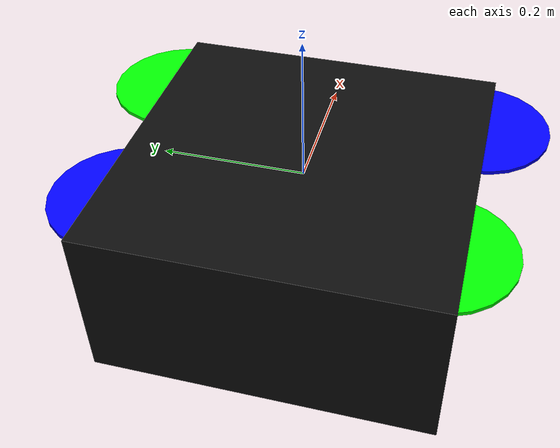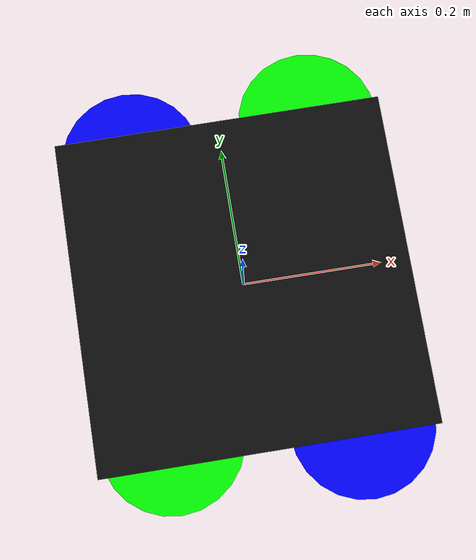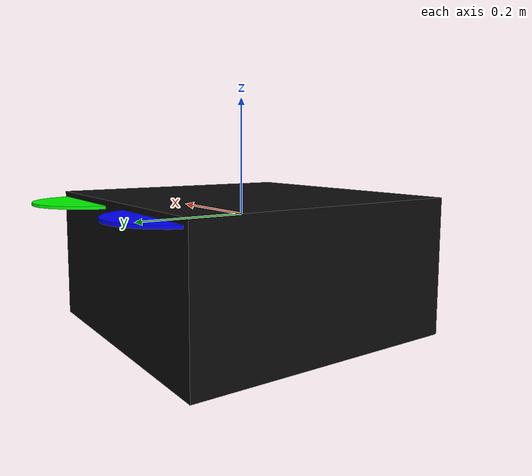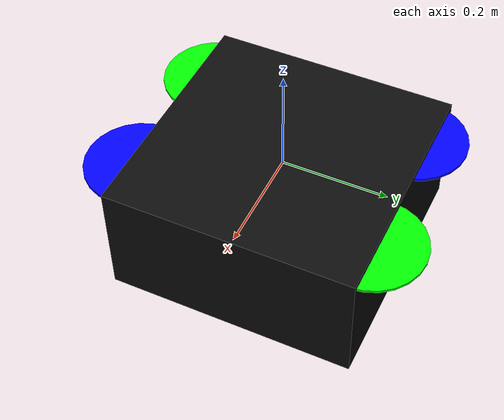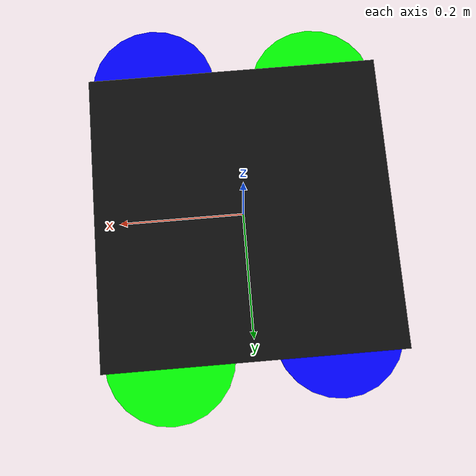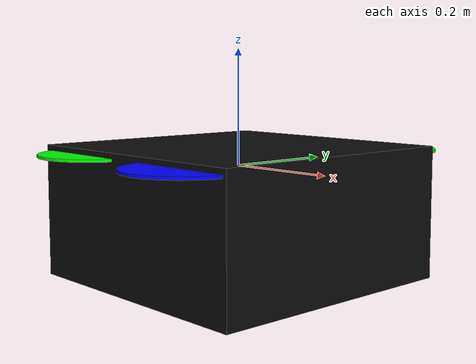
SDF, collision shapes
<?xml version='1.0'?>
<sdf version="1.9">
  <model name="iris_with_fixed_camera">
    <include>
      <uri>model://iris_with_standoffs</uri>
    </include>

    <include>
      <uri>model://generic_camera</uri>
      <name>camera</name>
      <pose degrees='true'>0 0 -0.04 0 90 0</pose>
    </include>

    <joint name="camera_joint" type="fixed">
      <parent>iris_with_standoffs::base_link</parent>
      <child>camera::camera_link</child>
    </joint>

    <!-- plugins -->
    <plugin filename="gz-sim-odometry-publisher-system"
            name="gz::sim::systems::OdometryPublisher">
      <dimensions>3</dimensions>
      <odom_publish_frequency>60.0</odom_publish_frequency>
    </plugin>
    <plugin filename="gz-sim-joint-state-publisher-system"
      name="gz::sim::systems::JointStatePublisher">
    </plugin>
    <plugin filename="gz-sim-lift-drag-system"
        name="gz::sim::systems::LiftDrag">
      <a0>0.3</a0>
      <alpha_stall>1.4</alpha_stall>
      <cla>4.2500</cla>
      <cda>0.10</cda>
      <cma>0.0</cma>
      <cla_stall>-0.025</cla_stall>
      <cda_stall>0.0</cda_stall>
      <cma_stall>0.0</cma_stall>
      <area>0.002</area>
      <air_density>1.2041</air_density>
      <cp>0.084 0 0</cp>
      <forward>0 1 0</forward>
      <upward>0 0 1</upward>
      <link_name>iris_with_standoffs::rotor_0</link_name>
    </plugin>
    <plugin filename="gz-sim-lift-drag-system"
        name="gz::sim::systems::LiftDrag">
      <a0>0.3</a0>
      <alpha_stall>1.4</alpha_stall>
      <cla>4.2500</cla>
      <cda>0.10</cda>
      <cma>0.0</cma>
      <cla_stall>-0.025</cla_stall>
      <cda_stall>0.0</cda_stall>
      <cma_stall>0.0</cma_stall>
      <area>0.002</area>
      <air_density>1.2041</air_density>
      <cp>-0.084 0 0</cp>
      <forward>0 -1 0</forward>
      <upward>0 0 1</upward>
      <link_name>iris_with_standoffs::rotor_0</link_name>
    </plugin>

    <plugin filename="gz-sim-lift-drag-system"
        name="gz::sim::systems::LiftDrag">
      <a0>0.3</a0>
      <alpha_stall>1.4</alpha_stall>
      <cla>4.2500</cla>
      <cda>0.10</cda>
      <cma>0.0</cma>
      <cla_stall>-0.025</cla_stall>
      <cda_stall>0.0</cda_stall>
      <cma_stall>0.0</cma_stall>
      <area>0.002</area>
      <air_density>1.2041</air_density>
      <cp>0.084 0 0</cp>
      <forward>0 1 0</forward>
      <upward>0 0 1</upward>
      <link_name>iris_with_standoffs::rotor_1</link_name>
    </plugin>
    <plugin filename="gz-sim-lift-drag-system"
        name="gz::sim::systems::LiftDrag">
      <a0>0.3</a0>
      <alpha_stall>1.4</alpha_stall>
      <cla>4.2500</cla>
      <cda>0.10</cda>
      <cma>0.0</cma>
      <cla_stall>-0.025</cla_stall>
      <cda_stall>0.0</cda_stall>
      <cma_stall>0.0</cma_stall>
      <area>0.002</area>
      <air_density>1.2041</air_density>
      <cp>-0.084 0 0</cp>
      <forward>0 -1 0</forward>
      <upward>0 0 1</upward>
      <link_name>iris_with_standoffs::rotor_1</link_name>
    </plugin>

    <plugin filename="gz-sim-lift-drag-system"
        name="gz::sim::systems::LiftDrag">
      <a0>0.3</a0>
      <alpha_stall>1.4</alpha_stall>
      <cla>4.2500</cla>
      <cda>0.10</cda>
      <cma>0.0</cma>
      <cla_stall>-0.025</cla_stall>
      <cda_stall>0.0</cda_stall>
      <cma_stall>0.0</cma_stall>
      <area>0.002</area>
      <air_density>1.2041</air_density>
      <cp>0.084 0 0</cp>
      <forward>0 -1 0</forward>
      <upward>0 0 1</upward>
      <link_name>iris_with_standoffs::rotor_2</link_name>
    </plugin>
    <plugin filename="gz-sim-lift-drag-system"
        name="gz::sim::systems::LiftDrag">
      <a0>0.3</a0>
      <alpha_stall>1.4</alpha_stall>
      <cla>4.2500</cla>
      <cda>0.10</cda>
      <cma>0.0</cma>
      <cla_stall>-0.025</cla_stall>
      <cda_stall>0.0</cda_stall>
      <cma_stall>0.0</cma_stall>
      <area>0.002</area>
      <air_density>1.2041</air_density>
      <cp>-0.084 0 0</cp>
      <forward>0 1 0</forward>
      <upward>0 0 1</upward>
      <link_name>iris_with_standoffs::rotor_2</link_name>
    </plugin>

    <plugin filename="gz-sim-lift-drag-system"
        name="gz::sim::systems::LiftDrag">
      <a0>0.3</a0>
      <alpha_stall>1.4</alpha_stall>
      <cla>4.2500</cla>
      <cda>0.10</cda>
      <cma>0.0</cma>
      <cla_stall>-0.025</cla_stall>
      <cda_stall>0.0</cda_stall>
      <cma_stall>0.0</cma_stall>
      <area>0.002</area>
      <air_density>1.2041</air_density>
      <cp>0.084 0 0</cp>
      <forward>0 -1 0</forward>
      <upward>0 0 1</upward>
      <link_name>iris_with_standoffs::rotor_3</link_name>
    </plugin>
    <plugin filename="gz-sim-lift-drag-system"
        name="gz::sim::systems::LiftDrag">
      <a0>0.3</a0>
      <alpha_stall>1.4</alpha_stall>
      <cla>4.2500</cla>
      <cda>0.10</cda>
      <cma>0.0</cma>
      <cla_stall>-0.025</cla_stall>
      <cda_stall>0.0</cda_stall>
      <cma_stall>0.0</cma_stall>
      <area>0.002</area>
      <air_density>1.2041</air_density>
      <cp>-0.084 0 0</cp>
      <forward>0 1 0</forward>
      <upward>0 0 1</upward>
      <link_name>iris_with_standoffs::rotor_3</link_name>
    </plugin>

    <plugin filename="gz-sim-apply-joint-force-system"
      name="gz::sim::systems::ApplyJointForce">
      <joint_name>iris_with_standoffs::rotor_0_joint</joint_name>
    </plugin>
    <plugin filename="gz-sim-apply-joint-force-system"
      name="gz::sim::systems::ApplyJointForce">
      <joint_name>iris_with_standoffs::rotor_1_joint</joint_name>
    </plugin>
    <plugin filename="gz-sim-apply-joint-force-system"
      name="gz::sim::systems::ApplyJointForce">
      <joint_name>iris_with_standoffs::rotor_2_joint</joint_name>
    </plugin>
    <plugin filename="gz-sim-apply-joint-force-system"
      name="gz::sim::systems::ApplyJointForce">
      <joint_name>iris_with_standoffs::rotor_3_joint</joint_name>
    </plugin>

    <plugin name="ArduPilotPlugin"
      filename="ArduPilotPlugin">
      <!-- Port settings -->
      <fdm_addr>127.0.0.1</fdm_addr>
      <fdm_port_in>9002</fdm_port_in>
      <connectionTimeoutMaxCount>5</connectionTimeoutMaxCount>
      <lock_step>1</lock_step>

      <!-- Frame conventions
        Require by ArduPilot: change model and gazebo from XYZ to XY-Z coordinates
      -->
      <modelXYZToAirplaneXForwardZDown degrees="true">0 0 0 180 0 0</modelXYZToAirplaneXForwardZDown>
      <gazeboXYZToNED degrees="true">0 0 0 180 0 90</gazeboXYZToNED>

      <!-- Sensors -->
      <imuName>iris_with_standoffs::imu_link::imu_sensor</imuName>

      <!--
          incoming control command [0, 1]
          so offset it by 0 to get [0, 1]
          and divide max target by 1.
          offset = 0
          multiplier = 838 max rpm / 1 = 838
        -->
      <control channel="0">
        <jointName>iris_with_standoffs::rotor_0_joint</jointName>
        <useForce>1</useForce>
        <multiplier>838</multiplier>
        <offset>0</offset>
        <servo_min>1100</servo_min>
        <servo_max>1900</servo_max>
        <type>VELOCITY</type>
        <p_gain>0.20</p_gain>
        <i_gain>0</i_gain>
        <d_gain>0</d_gain>
        <i_max>0</i_max>
        <i_min>0</i_min>
        <cmd_max>2.5</cmd_max>
        <cmd_min>-2.5</cmd_min>
        <controlVelocitySlowdownSim>1</controlVelocitySlowdownSim>
      </control>

      <control channel="1">
        <jointName>iris_with_standoffs::rotor_1_joint</jointName>
        <useForce>1</useForce>
        <multiplier>838</multiplier>
        <offset>0</offset>
        <servo_min>1100</servo_min>
        <servo_max>1900</servo_max>
        <type>VELOCITY</type>
        <p_gain>0.20</p_gain>
        <i_gain>0</i_gain>
        <d_gain>0</d_gain>
        <i_max>0</i_max>
        <i_min>0</i_min>
        <cmd_max>2.5</cmd_max>
        <cmd_min>-2.5</cmd_min>
        <controlVelocitySlowdownSim>1</controlVelocitySlowdownSim>
      </control>

      <control channel="2">
        <jointName>iris_with_standoffs::rotor_2_joint</jointName>
        <useForce>1</useForce>
        <multiplier>-838</multiplier>
        <offset>0</offset>
        <servo_min>1100</servo_min>
        <servo_max>1900</servo_max>
        <type>VELOCITY</type>
        <p_gain>0.20</p_gain>
        <i_gain>0</i_gain>
        <d_gain>0</d_gain>
        <i_max>0</i_max>
        <i_min>0</i_min>
        <cmd_max>2.5</cmd_max>
        <cmd_min>-2.5</cmd_min>
        <controlVelocitySlowdownSim>1</controlVelocitySlowdownSim>
      </control>

      <control channel="3">
        <jointName>iris_with_standoffs::rotor_3_joint</jointName>
        <useForce>1</useForce>
        <multiplier>-838</multiplier>
        <offset>0</offset>
        <servo_min>1100</servo_min>
        <servo_max>1900</servo_max>
        <type>VELOCITY</type>
        <p_gain>0.20</p_gain>
        <i_gain>0</i_gain>
        <d_gain>0</d_gain>
        <i_max>0</i_max>
        <i_min>0</i_min>
        <cmd_max>2.5</cmd_max>
        <cmd_min>-2.5</cmd_min>
        <controlVelocitySlowdownSim>1</controlVelocitySlowdownSim>
      </control>

    </plugin>
  </model>
</sdf>

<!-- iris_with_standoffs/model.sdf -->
<sdf version='1.9'>
  <model name='iris_with_standoffs'>
    <pose>0 0 0 0 0 0</pose>
    <link name='base_link'>
      <velocity_decay>
        <linear>0.0</linear>
        <angular>0.0</angular>
      </velocity_decay>
      <inertial>
        <pose>0 0 0 0 0 0</pose>
        <mass>1.5</mass>
        <inertia>
          <ixx>0.008</ixx>
          <ixy>0</ixy>
          <ixz>0</ixz>
          <iyy>0.015</iyy>
          <iyz>0</iyz>
          <izz>0.017</izz>
        </inertia>
      </inertial>
      <collision name='base_collision'>
        <pose>0 0 -0.08 0 0 0</pose>
        <geometry>
          <box>
            <size>0.47 0.47 0.23</size>
          </box>
        </geometry>
        <surface>
          <contact>
            <ode>
              <max_vel>100.0</max_vel>
              <min_depth>0.001</min_depth>
            </ode>
          </contact>
          <friction>
            <ode>
              <mu>100000.0</mu>
              <mu2>100000.0</mu2>
            </ode>
          </friction>
        </surface>
      </collision>
      <visual name='base_visual'>
        <!-- Add 180 deg yaw rotation -->
        <pose degrees='true'>0 0 0 0 0 180</pose>
        <geometry>
          <mesh>
            <uri>model://iris_with_standoffs/meshes/iris.dae</uri>
          </mesh>
        </geometry>
        <material>
          <ambient>0.05 0.05 0.05</ambient>
          <diffuse>0.05 0.05 0.05</diffuse>
          <specular>1 1 1 1</specular>
          <pbr>
            <metal>
              <metalness>0.5</metalness>
              <roughness>0.5</roughness>
            </metal>
          </pbr>
        </material>
      </visual>

      <visual name='front_left_leg_visual'>
        <pose>0.123 0.22 -0.11 0 0 0</pose>
        <geometry>
          <cylinder>
            <radius>0.005</radius>
            <length>0.17</length>
          </cylinder>
        </geometry>
        <material>
          <ambient>0.05 0.05 0.05</ambient>
          <diffuse>0.05 0.05 0.05</diffuse>
          <specular>0.01 0.01 0.01 1.0</specular>
          <pbr>
            <metal>
              <metalness>0.5</metalness>
              <roughness>0.5</roughness>
            </metal>
          </pbr>
        </material>
      </visual>
      <visual name='front_right_leg_visual'>
        <pose>0.123 -0.22 -0.11 0 0 0</pose>
        <geometry>
          <cylinder>
            <radius>0.005</radius>
            <length>0.17</length>
          </cylinder>
        </geometry>
        <material>
          <ambient>0.05 0.05 0.05</ambient>
          <diffuse>0.05 0.05 0.05</diffuse>
          <specular>0.01 0.01 0.01 1.0</specular>
          <pbr>
            <metal>
              <metalness>0.5</metalness>
              <roughness>0.5</roughness>
            </metal>
          </pbr>
        </material>
      </visual>
      <visual name='rear_left_leg_visual'>
        <pose>-0.140 0.21 -0.11 0 0 0</pose>
        <geometry>
          <cylinder>
            <radius>0.005</radius>
            <length>0.17</length>
          </cylinder>
        </geometry>
        <material>
          <ambient>0.05 0.05 0.05</ambient>
          <diffuse>0.05 0.05 0.05</diffuse>
          <specular>0.01 0.01 0.01 1.0</specular>
          <pbr>
            <metal>
              <metalness>0.5</metalness>
              <roughness>0.5</roughness>
            </metal>
          </pbr>
        </material>
      </visual>
      <visual name='rear_right_leg_visual'>
        <pose>-0.140 -0.21 -0.11 0 0 0</pose>
        <geometry>
          <cylinder>
            <radius>0.005</radius>
            <length>0.17</length>
          </cylinder>
        </geometry>
        <material>
          <ambient>0.05 0.05 0.05</ambient>
          <diffuse>0.05 0.05 0.05</diffuse>
          <specular>0.01 0.01 0.01 1.0</specular>
          <pbr>
            <metal>
              <metalness>0.5</metalness>
              <roughness>0.5</roughness>
            </metal>
          </pbr>
        </material>
      </visual>
      <!-- Coordinate axes for drone base_link -->
      <visual name="axis_x">
        <pose>0.15 0 0 0 1.5707963 0</pose>
        <geometry>
          <cylinder>
            <radius>0.008</radius>
            <length>0.3</length>
          </cylinder>
        </geometry>
        <material>
          <ambient>1 0 0 1</ambient>
          <diffuse>1 0 0 1</diffuse>
          <emissive>0.8 0 0 1</emissive>
        </material>
      </visual>
      <visual name="axis_y">
        <pose>0 0.15 0 1.5707963 0 0</pose>
        <geometry>
          <cylinder>
            <radius>0.008</radius>
            <length>0.3</length>
          </cylinder>
        </geometry>
        <material>
          <ambient>0 1 0 1</ambient>
          <diffuse>0 1 0 1</diffuse>
          <emissive>0 0.8 0 1</emissive>
        </material>
      </visual>
      <visual name="axis_z">
        <pose>0 0 0.15 0 0 0</pose>
        <geometry>
          <cylinder>
            <radius>0.008</radius>
            <length>0.3</length>
          </cylinder>
        </geometry>
        <material>
          <ambient>0 0 1 1</ambient>
          <diffuse>0 0 1 1</diffuse>
          <emissive>0 0 0.8 1</emissive>
        </material>
      </visual>
    </link>
    <link name='imu_link'>
      <inertial>
        <pose>0 0 0 0 0 0</pose>
        <mass>0.15</mass>
        <inertia>
          <ixx>0.00001</ixx>
          <ixy>0</ixy>
          <ixz>0</ixz>
          <iyy>0.00002</iyy>
          <iyz>0</iyz>
          <izz>0.00002</izz>
        </inertia>
      </inertial>
      <sensor name="imu_sensor" type="imu">
        <pose degrees="true">0 0 0 180 0 0</pose>
        <always_on>1</always_on>
        <update_rate>1000.0</update_rate>
      </sensor>
    </link>
    <joint name='imu_joint' type='revolute'>
      <child>imu_link</child>
      <parent>base_link</parent>
      <axis>
        <xyz>0 0 1</xyz>
        <limit>
          <lower>0</lower>
          <upper>0</upper>
          <effort>0</effort>
          <velocity>0</velocity>
        </limit>
        <dynamics>
          <damping>1.0</damping>
        </dynamics>
      </axis>
    </joint>
    <link name='rotor_0'>
      <pose>0.13 -0.22 0.023 0 0 0</pose>
      <inertial>
        <pose>0 0 0 0 0 0</pose>
        <mass>0.025</mass>
        <inertia>
          <ixx>9.75e-06</ixx>
          <ixy>0</ixy>
          <ixz>0</ixz>
          <iyy>0.000166704</iyy>
          <iyz>0</iyz>
          <izz>0.000167604</izz>
        </inertia>
      </inertial>
      <collision name='rotor_0_collision'>
        <pose>0 0 0 0 0 0</pose>
        <geometry>
          <cylinder>
            <length>0.005</length>
            <radius>0.1</radius>
          </cylinder>
        </geometry>
        <surface>
          <contact>
            <ode/>
          </contact>
          <friction>
            <ode/>
          </friction>
        </surface>
      </collision>
      <visual name='rotor_0_visual'>
        <pose>0 0 0 0 0 0</pose>
        <geometry>
          <mesh>
            <scale>1 1 1</scale>
            <uri>model://iris_with_standoffs/meshes/iris_prop_ccw.dae</uri>
          </mesh>
        </geometry>
        <material>
          <ambient>0 0 1</ambient>
          <diffuse>0 0 1</diffuse>
          <specular>1 1 1 1</specular>
          <pbr>
            <metal>
              <metalness>0.5</metalness>
              <roughness>0.5</roughness>
            </metal>
          </pbr>
        </material>
      </visual>
      <gravity>1</gravity>
      <velocity_decay/>
      <self_collide>0</self_collide>
    </link>
    <joint name='rotor_0_joint' type='revolute'>
      <child>rotor_0</child>
      <parent>base_link</parent>
      <axis>
        <xyz>0 0 1</xyz>
        <limit>
          <lower>-1e+16</lower>
          <upper>1e+16</upper>
        </limit>
        <dynamics>
          <damping>0.004</damping>
        </dynamics>
      </axis>
      <physics>
        <ode>
          <implicit_spring_damper>1</implicit_spring_damper>
        </ode>
      </physics>
    </joint>
    <link name='rotor_1'>
      <pose>-0.13 0.2 0.023 0 0 0</pose>
      <inertial>
        <pose>0 0 0 0 0 0</pose>
        <mass>0.025</mass>
        <inertia>
          <ixx>9.75e-06</ixx>
          <ixy>0</ixy>
          <ixz>0</ixz>
          <iyy>0.000166704</iyy>
          <iyz>0</iyz>
          <izz>0.000167604</izz>
        </inertia>
      </inertial>
      <collision name='rotor_1_collision'>
        <pose>0 0 0 0 0 0</pose>
        <geometry>
          <cylinder>
            <length>0.005</length>
            <radius>0.1</radius>
          </cylinder>
        </geometry>
        <surface>
          <contact>
            <ode/>
          </contact>
          <friction>
            <ode/>
          </friction>
        </surface>
      </collision>
      <visual name='rotor_1_visual'>
        <pose>0.0095 0.0195 0 0 0 0</pose>
        <geometry>
          <mesh>
            <scale>1 1 1</scale>
            <uri>model://iris_with_standoffs/meshes/iris_prop_ccw.dae</uri>
          </mesh>
        </geometry>
        <material>
          <ambient>0 0 1 1</ambient>
          <diffuse>0 0 1 1</diffuse>
          <specular>1 1 1 1</specular>
          <pbr>
            <metal>
              <metalness>0.5</metalness>
              <roughness>0.5</roughness>
            </metal>
          </pbr>
        </material>
      </visual>
      <gravity>1</gravity>
      <velocity_decay/>
      <self_collide>0</self_collide>
    </link>
    <joint name='rotor_1_joint' type='revolute'>
      <child>rotor_1</child>
      <parent>base_link</parent>
      <axis>
        <xyz>0 0 1</xyz>
        <limit>
          <lower>-1e+16</lower>
          <upper>1e+16</upper>
        </limit>
        <dynamics>
          <damping>0.004</damping>
        </dynamics>
      </axis>
      <physics>
        <ode>
          <implicit_spring_damper>1</implicit_spring_damper>
        </ode>
      </physics>
    </joint>
    <link name='rotor_2'>
      <pose>0.13 0.22 0.023 0 0 0</pose>
      <inertial>
        <pose>0 0 0 0 0 0</pose>
        <mass>0.025</mass>
        <inertia>
          <ixx>9.75e-06</ixx>
          <ixy>0</ixy>
          <ixz>0</ixz>
          <iyy>0.000166704</iyy>
          <iyz>0</iyz>
          <izz>0.000167604</izz>
        </inertia>
      </inertial>
      <collision name='rotor_2_collision'>
        <pose>0 0 0 0 0 0</pose>
        <geometry>
          <cylinder>
            <length>0.005</length>
            <radius>0.1</radius>
          </cylinder>
        </geometry>
        <surface>
          <contact>
            <ode/>
          </contact>
          <friction>
            <ode/>
          </friction>
        </surface>
      </collision>
      <visual name='rotor_2_visual'>
        <pose>0 0 0 0 0 0</pose>
        <geometry>
          <mesh>
            <scale>1 1 1</scale>
            <uri>model://iris_with_standoffs/meshes/iris_prop_cw.dae</uri>
          </mesh>
        </geometry>
        <material>
          <ambient>0 1 0</ambient>
          <diffuse>0 1 0</diffuse>
          <specular>1 1 1 1</specular>
          <pbr>
            <metal>
              <metalness>0.5</metalness>
              <roughness>0.5</roughness>
            </metal>
          </pbr>
        </material>
      </visual>
      <gravity>1</gravity>
      <velocity_decay/>
      <self_collide>0</self_collide>
    </link>
    <joint name='rotor_2_joint' type='revolute'>
      <child>rotor_2</child>
      <parent>base_link</parent>
      <axis>
        <xyz>0 0 1</xyz>
        <limit>
          <lower>-1e+16</lower>
          <upper>1e+16</upper>
        </limit>
        <dynamics>
          <damping>0.004</damping>
        </dynamics>
      </axis>
      <physics>
        <ode>
          <implicit_spring_damper>1</implicit_spring_damper>
        </ode>
      </physics>
    </joint>
    <link name='rotor_3'>
      <pose>-0.13 -0.2 0.023 0 0 0</pose>
      <inertial>
        <pose>0 0 0 0 0 0</pose>
        <mass>0.025</mass>
        <inertia>
          <ixx>9.75e-06</ixx>
          <ixy>0</ixy>
          <ixz>0</ixz>
          <iyy>0.000166704</iyy>
          <iyz>0</iyz>
          <izz>0.000167604</izz>
        </inertia>
      </inertial>
      <collision name='rotor_3_collision'>
        <pose>0 0 0 0 0 0</pose>
        <geometry>
          <cylinder>
            <length>0.005</length>
            <radius>0.1</radius>
          </cylinder>
        </geometry>
        <surface>
          <contact>
            <ode/>
          </contact>
          <friction>
            <ode/>
          </friction>
        </surface>
      </collision>
      <visual name='rotor_3_visual'>
        <pose>0 0 0 0 0 0</pose>
        <geometry>
          <mesh>
            <scale>1 1 1</scale>
            <uri>model://iris_with_standoffs/meshes/iris_prop_cw.dae</uri>
          </mesh>
        </geometry>
        <material>
          <ambient>0 1 0</ambient>
          <diffuse>0 1 0</diffuse>
          <specular>1 1 1 1</specular>
          <pbr>
            <metal>
              <metalness>0.5</metalness>
              <roughness>0.5</roughness>
            </metal>
          </pbr>
        </material>
      </visual>
      <gravity>1</gravity>
      <velocity_decay/>
      <self_collide>0</self_collide>
    </link>
    <joint name='rotor_3_joint' type='revolute'>
      <child>rotor_3</child>
      <parent>base_link</parent>
      <axis>
        <xyz>0 0 1</xyz>
        <limit>
          <lower>-1e+16</lower>
          <upper>1e+16</upper>
        </limit>
        <dynamics>
          <damping>0.004</damping>
        </dynamics>
      </axis>
      <physics>
        <ode>
          <implicit_spring_damper>1</implicit_spring_damper>
        </ode>
      </physics>
    </joint>
  </model>
</sdf>

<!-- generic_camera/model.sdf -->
<sdf version='1.9'>
  <model name='generic_camera'>
    <pose>0 0 0 0 0 0</pose>
    <self_collide>false</self_collide>
    <static>false</static>
    <link name='camera_link'>
      <inertial>
        <pose>0 0 0 0 0 0</pose>
        <mass>0.050</mass>
        <inertia>
          <ixx>0.00004</ixx>
          <ixy>0</ixy>
          <ixz>0</ixz>
          <iyy>0.00004</iyy>
          <iyz>0</iyz>
          <izz>0.00004</izz>
        </inertia>
      </inertial>

      <!-- VISUAL - CUERPO DE LA CÁMARA                     -->

      <!-- EJES COORDENADOS - MARCO DE REFERENCIA CÁMARA   -->

      <!-- Eje X de la cámara (rojo) = horizontal derecha = -Y mundo -->
      <visual name="axis_x">
        <pose>0 -0.08 0 1.5707963 0 0</pose>
        <geometry>
          <cylinder>
            <radius>0.004</radius>
            <length>0.16</length>
          </cylinder>
        </geometry>
        <material>
          <ambient>1 0 0 1</ambient>
          <diffuse>1 0 0 1</diffuse>
          <emissive>0.8 0 0 1</emissive>
        </material>
      </visual>

      <!-- Eje Y de la cámara (verde) = vertical abajo = -Z mundo -->
      <visual name="axis_y">
        <pose>0 0 -0.08 0 0 0</pose>
        <geometry>
          <cylinder>
            <radius>0.004</radius>
            <length>0.16</length>
          </cylinder>
        </geometry>
        <material>
          <ambient>0 1 0 1</ambient>
          <diffuse>0 1 0 1</diffuse>
          <emissive>0 0.8 0 1</emissive>
        </material>
      </visual>

      <!-- Etiquetas en las puntas de los ejes -->

      <!-- COLISIÓN                                          -->
      <collision name='camera_col'>
        <pose>0 0 0 0 0 0</pose>
        <geometry>
          <cylinder>
            <radius>0.025</radius>
            <length>0.020</length>
          </cylinder>
        </geometry>
      </collision>

      <!-- SENSOR DE CÁMARA - ORIENTACIÓN DEFAULT           -->
      <!-- Sin rotación - orientación default de Gazebo
           Mira en dirección +Z (hacia adelante)
      -->
      <sensor name="camera" type="camera">
        <pose degrees="true">0 0 0 0 0 0</pose>

        <camera>
          <horizontal_fov>1.047</horizontal_fov>
          <image>
            <width>1080</width>
            <height>1080</height>
            <format>R8G8B8</format>
          </image>
          <clip>
            <near>0.1</near>
            <far>100</far>
          </clip>
        </camera>

        <always_on>1</always_on>
        <update_rate>60</update_rate>
        <visualize>false</visualize>
      </sensor>
    </link>
  </model>
</sdf>
